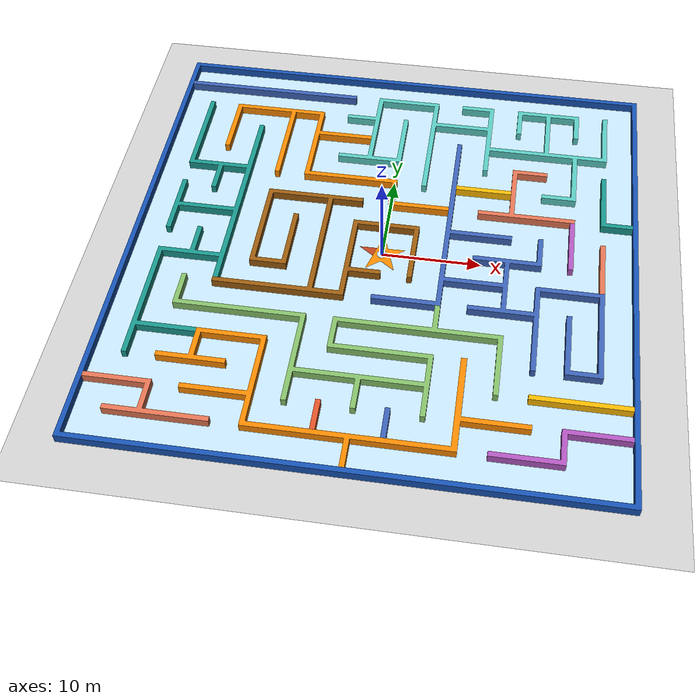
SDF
<sdf version='1.10'>
  <world name='empty'>
    <physics name='1ms' type='ignored'>
      <max_step_size>0.001</max_step_size>
      <real_time_factor>1</real_time_factor>
      <real_time_update_rate>1000</real_time_update_rate>
    </physics>
    <plugin name='gz::sim::systems::Physics' filename='gz-sim-physics-system'/>
    <plugin name='gz::sim::systems::UserCommands' filename='gz-sim-user-commands-system'/>
    <plugin name='gz::sim::systems::SceneBroadcaster' filename='gz-sim-scene-broadcaster-system'/>
    <plugin name='gz::sim::systems::Contact' filename='gz-sim-contact-system'/>
    <plugin name='gz::sim::systems::Sensors' filename='gz-sim-sensors-system'>
      <render_engine>ogre2</render_engine>
    </plugin>

    <gravity>0 0 -9.8000000000000007</gravity>
    <magnetic_field>5.5644999999999998e-06 2.2875799999999999e-05 -4.2388400000000002e-05</magnetic_field>
    <atmosphere type='adiabatic'/>
    <scene>
      <ambient>0.400000006 0.400000006 0.400000006 1</ambient>
      <background>0.699999988 0.699999988 0.699999988 1</background>
      <shadows>true</shadows>
    </scene>
    <model name='ground_plane'>
      <static>true</static>
      <link name='link'>
        <collision name='collision'>
          <geometry>
            <plane>
              <normal>0 0 1</normal>
              <size>100 100</size>
            </plane>
          </geometry>
          <surface>
            <friction>
              <ode/>
            </friction>
            <bounce/>
            <contact/>
          </surface>
        </collision>
        <visual name='visual'>
          <geometry>
            <plane>
              <normal>0 0 1</normal>
              <size>100 100</size>
            </plane>
          </geometry>
          <material>
            <ambient>0.800000012 0.800000012 0.800000012 1</ambient>
            <diffuse>0.800000012 0.800000012 0.800000012 1</diffuse>
            <specular>0.800000012 0.800000012 0.800000012 1</specular>
          </material>
        </visual>
        <pose>0 0 0 0 0 0</pose>
        <inertial>
          <pose>0 0 0 0 0 0</pose>
          <mass>1</mass>
          <inertia>
            <ixx>1</ixx>
            <ixy>0</ixy>
            <ixz>0</ixz>
            <iyy>1</iyy>
            <iyz>0</iyz>
            <izz>1</izz>
          </inertia>
        </inertial>
        <enable_wind>false</enable_wind>
      </link>
      <pose>0 0 0 0 0 0</pose>
      <self_collide>false</self_collide>
    </model>
    <model name='maze_world'>
      <link name='part_1'>
        <inertial>
          <pose>0 0 0.5 0 0 0</pose>
          <mass>106252</mass>
          <inertia>
            <ixx>45174800</ixx>
            <ixy>-7.7797000000000005e-08</ixy>
            <ixz>3.2700000000000001e-10</ixz>
            <iyy>45174800</iyy>
            <iyz>8.08e-10</iyz>
            <izz>90331900</izz>
          </inertia>
        </inertial>
        <pose>0 0 0 0 0 0</pose>
        <visual name='part_1_visual_mesh_1'>
          <pose relative_to='part_1'>0 0 0 0 0 0</pose>
          <geometry>
            <mesh>
              <uri>file:///root/ros2_ws/src/gazebo_sim/gazebo_core/core_gazebo/models/maze_world/meshes/part_1.stl</uri>
            </mesh>
          </geometry>
          <material>
            <ambient>0.0862744972 0.31764701 0.690195978 1</ambient>
            <diffuse>0.0862744972 0.31764701 0.690195978 1</diffuse>
            <specular>0.100000001 0.100000001 0.100000001 1</specular>
            <emissive>0 0 0 0</emissive>
          </material>
        </visual>
        <collision name='part_1_collision_mesh_2'>
          <pose relative_to='part_1'>0 0 0 0 0 0</pose>
          <geometry>
            <mesh>
              <uri>file:///root/ros2_ws/src/gazebo_sim/gazebo_core/core_gazebo/models/maze_world/meshes/part_1.stl</uri>
            </mesh>
          </geometry>
        </collision>
        <enable_wind>false</enable_wind>
      </link>
      <link name='part_2'>
        <inertial>
          <pose>-6.3289900000000001 -0.179225 0.5 0 0 0</pose>
          <mass>41647.800000000003</mass>
          <inertia>
            <ixx>730806</ixx>
            <ixy>-75930.399999999994</ixy>
            <ixz>-3.3999999999999999e-11</ixz>
            <iyy>1034040</iyy>
            <iyz>-7.9999999999999998e-12</iyz>
            <izz>1757900</izz>
          </inertia>
        </inertial>
        <pose>2.8867953456463336e-18 0 5.2403511826767952e-11 1.2030628608740676e-12 -4.9611963414138126e-12 3.6288946374317178e-20</pose>
        <visual name='part_2_visual_mesh_1'>
          <pose relative_to='part_2'>0 0 0 0 0 0</pose>
          <geometry>
            <mesh>
              <uri>file:///root/ros2_ws/src/gazebo_sim/gazebo_core/core_gazebo/models/maze_world/meshes/part_2.stl</uri>
            </mesh>
          </geometry>
          <material>
            <ambient>0.600000024 0.352941006 0.0549019985 1</ambient>
            <diffuse>0.600000024 0.352941006 0.0549019985 1</diffuse>
            <specular>0.100000001 0.100000001 0.100000001 1</specular>
            <emissive>0 0 0 0</emissive>
          </material>
        </visual>
        <collision name='part_2_collision_mesh_2'>
          <pose relative_to='part_2'>0 0 0 0 0 0</pose>
          <geometry>
            <mesh>
              <uri>file:///root/ros2_ws/src/gazebo_sim/gazebo_core/core_gazebo/models/maze_world/meshes/part_2.stl</uri>
            </mesh>
          </geometry>
        </collision>
        <enable_wind>false</enable_wind>
      </link>
      <link name='part_3'>
        <inertial>
          <pose>12.539300000000001 -2.5064600000000001 0.5 0 0 0</pose>
          <mass>51445</mass>
          <inertia>
            <ixx>2085750</ixx>
            <ixy>1058920</ixy>
            <ixz>2e-12</ixz>
            <iyy>1769860</iyy>
            <iyz>-7.0000000000000001e-12</iyz>
            <izz>3847040</izz>
          </inertia>
        </inertial>
        <pose>-1.9067704538031702e-20 0 4.3685453017180973e-11 5.2337667814900106e-12 1.4300286899360531e-13 -2.2617703044835857e-20</pose>
        <visual name='part_3_visual_mesh_1'>
          <pose relative_to='part_3'>0 0 0 0 0 0</pose>
          <geometry>
            <mesh>
              <uri>file:///root/ros2_ws/src/gazebo_sim/gazebo_core/core_gazebo/models/maze_world/meshes/part_3.stl</uri>
            </mesh>
          </geometry>
          <material>
            <ambient>0.231372997 0.380391985 0.705882013 1</ambient>
            <diffuse>0.231372997 0.380391985 0.705882013 1</diffuse>
            <specular>0.100000001 0.100000001 0.100000001 1</specular>
            <emissive>0 0 0 0</emissive>
          </material>
        </visual>
        <collision name='part_3_collision_mesh_2'>
          <pose relative_to='part_3'>0 0 0 0 0 0</pose>
          <geometry>
            <mesh>
              <uri>file:///root/ros2_ws/src/gazebo_sim/gazebo_core/core_gazebo/models/maze_world/meshes/part_3.stl</uri>
            </mesh>
          </geometry>
        </collision>
        <enable_wind>false</enable_wind>
      </link>
      <link name='part_4'>
        <inertial>
          <pose>8.4704899999999999 17.296399999999998 0.5 0 0 0</pose>
          <mass>57995.5</mass>
          <inertia>
            <ixx>762791</ixx>
            <ixy>-46266.199999999997</ixy>
            <ixz>7.4000000000000003e-11</ixz>
            <iyy>4253970</iyy>
            <iyz>-3.9999999999999999e-12</iyz>
            <izz>5007100</izz>
          </inertia>
        </inertial>
        <pose>-1.4403310938268579e-12 7.1720407390785113e-13 -8.557769417545662e-07 1.2099728341305749e-08 -4.7352610747229486e-08 -6.2716405280342972e-14</pose>
        <visual name='part_4_visual_mesh_1'>
          <pose relative_to='part_4'>0 0 0 0 0 0</pose>
          <geometry>
            <mesh>
              <uri>file:///root/ros2_ws/src/gazebo_sim/gazebo_core/core_gazebo/models/maze_world/meshes/part_4.stl</uri>
            </mesh>
          </geometry>
          <material>
            <ambient>0.341176003 0.776471019 0.741176009 1</ambient>
            <diffuse>0.341176003 0.776471019 0.741176009 1</diffuse>
            <specular>0.100000001 0.100000001 0.100000001 1</specular>
            <emissive>0 0 0 0</emissive>
          </material>
        </visual>
        <collision name='part_4_collision_mesh_2'>
          <pose relative_to='part_4'>0 0 0 0 0 0</pose>
          <geometry>
            <mesh>
              <uri>file:///root/ros2_ws/src/gazebo_sim/gazebo_core/core_gazebo/models/maze_world/meshes/part_4.stl</uri>
            </mesh>
          </geometry>
        </collision>
        <enable_wind>false</enable_wind>
      </link>
      <link name='part_5'>
        <inertial>
          <pose>13.6775 8.4757099999999994 0.5 0 0 0</pose>
          <mass>10236</mass>
          <inertia>
            <ixx>71104.399999999994</ixx>
            <ixy>4397.1599999999999</ixy>
            <ixz>-0</ixz>
            <iyy>51452.300000000003</iyy>
            <iyz>0</iyz>
            <izz>120851</izz>
          </inertia>
        </inertial>
        <pose>-1.1832024653495936e-18 0 2.5838466574668041e-11 1.2600257762805637e-12 1.8314860739970823e-12 4.7464856331541077e-20</pose>
        <visual name='part_5_visual_mesh_1'>
          <pose relative_to='part_5'>0 0 0 0 0 0</pose>
          <geometry>
            <mesh>
              <uri>file:///root/ros2_ws/src/gazebo_sim/gazebo_core/core_gazebo/models/maze_world/meshes/part_5.stl</uri>
            </mesh>
          </geometry>
          <material>
            <ambient>0.87450999 0.447059005 0.31764701 1</ambient>
            <diffuse>0.87450999 0.447059005 0.31764701 1</diffuse>
            <specular>0.100000001 0.100000001 0.100000001 1</specular>
            <emissive>0 0 0 0</emissive>
          </material>
        </visual>
        <collision name='part_5_collision_mesh_2'>
          <pose relative_to='part_5'>0 0 0 0 0 0</pose>
          <geometry>
            <mesh>
              <uri>file:///root/ros2_ws/src/gazebo_sim/gazebo_core/core_gazebo/models/maze_world/meshes/part_5.stl</uri>
            </mesh>
          </geometry>
        </collision>
        <enable_wind>false</enable_wind>
      </link>
      <link name='part_6'>
        <inertial>
          <pose>-2.9881199999999999 -18.249300000000002 0.5 0 0 0</pose>
          <mass>37324.699999999997</mass>
          <inertia>
            <ixx>445565</ixx>
            <ixy>478436</ixy>
            <ixz>-3.0000000000000001e-12</ixz>
            <iyy>3844420</iyy>
            <iyz>4.6999999999999999e-11</iyz>
            <izz>4283760</izz>
          </inertia>
        </inertial>
        <pose>-1.1447749571675335e-19 0 9.2766174030617426e-12 -1.2678875449735637e-12 -4.3339504647299246e-13 1.253253968968503e-20</pose>
        <visual name='part_6_visual_mesh_1'>
          <pose relative_to='part_6'>0 0 0 0 0 0</pose>
          <geometry>
            <mesh>
              <uri>file:///root/ros2_ws/src/gazebo_sim/gazebo_core/core_gazebo/models/maze_world/meshes/part_6.stl</uri>
            </mesh>
          </geometry>
          <material>
            <ambient>0.972549021 0.529411972 0.00392156979 1</ambient>
            <diffuse>0.972549021 0.529411972 0.00392156979 1</diffuse>
            <specular>0.100000001 0.100000001 0.100000001 1</specular>
            <emissive>0 0 0 0</emissive>
          </material>
        </visual>
        <collision name='part_6_collision_mesh_2'>
          <pose relative_to='part_6'>0 0 0 0 0 0</pose>
          <geometry>
            <mesh>
              <uri>file:///root/ros2_ws/src/gazebo_sim/gazebo_core/core_gazebo/models/maze_world/meshes/part_6.stl</uri>
            </mesh>
          </geometry>
        </collision>
        <enable_wind>false</enable_wind>
      </link>
      <link name='part_7'>
        <inertial>
          <pose>18.726600000000001 -20.385400000000001 0.5 0 0 0</pose>
          <mass>8303.2700000000004</mass>
          <inertia>
            <ixx>18666.5</ixx>
            <ixy>-32932.800000000003</ixy>
            <ixz>0</ixz>
            <iyy>89447.5</iyy>
            <iyz>-2e-12</iyz>
            <izz>106730</izz>
          </inertia>
        </inertial>
        <pose>4.3021526739912099e-19 0 -1.4936069468556022e-10 -5.6195930131709723e-12 -1.9327626173654104e-12 4.456177446047507e-20</pose>
        <visual name='part_7_visual_mesh_1'>
          <pose relative_to='part_7'>0 0 0 0 0 0</pose>
          <geometry>
            <mesh>
              <uri>file:///root/ros2_ws/src/gazebo_sim/gazebo_core/core_gazebo/models/maze_world/meshes/part_7.stl</uri>
            </mesh>
          </geometry>
          <material>
            <ambient>0.68235302 0.333332986 0.737254977 1</ambient>
            <diffuse>0.68235302 0.333332986 0.737254977 1</diffuse>
            <specular>0.100000001 0.100000001 0.100000001 1</specular>
            <emissive>0 0 0 0</emissive>
          </material>
        </visual>
        <collision name='part_7_collision_mesh_2'>
          <pose relative_to='part_7'>0 0 0 0 0 0</pose>
          <geometry>
            <mesh>
              <uri>file:///root/ros2_ws/src/gazebo_sim/gazebo_core/core_gazebo/models/maze_world/meshes/part_7.stl</uri>
            </mesh>
          </geometry>
        </collision>
        <enable_wind>false</enable_wind>
      </link>
      <link name='part_8'>
        <inertial>
          <pose>20.2712 -15.6045 0.5 0 0 0</pose>
          <mass>4974.7200000000003</mass>
          <inertia>
            <ixx>518.20000000000005</ixx>
            <ixy>0</ixy>
            <ixz>0</ixz>
            <iyy>37495.699999999997</iyy>
            <iyz>0</iyz>
            <izz>37184.800000000003</izz>
          </inertia>
        </inertial>
        <pose>-1.5858466107466091e-20 0 -6.2115708467438955e-11 5.0586645963105657e-14 -3.3927885498230572e-17 -1.6165443092599035e-22</pose>
        <visual name='part_8_visual_mesh_1'>
          <pose relative_to='part_8'>0 0 0 0 0 0</pose>
          <geometry>
            <mesh>
              <uri>file:///root/ros2_ws/src/gazebo_sim/gazebo_core/core_gazebo/models/maze_world/meshes/part_8.stl</uri>
            </mesh>
          </geometry>
          <material>
            <ambient>0.980391979 0.713724971 0.00392156979 1</ambient>
            <diffuse>0.980391979 0.713724971 0.00392156979 1</diffuse>
            <specular>0.100000001 0.100000001 0.100000001 1</specular>
            <emissive>0 0 0 0</emissive>
          </material>
        </visual>
        <collision name='part_8_collision_mesh_2'>
          <pose relative_to='part_8'>0 0 0 0 0 0</pose>
          <geometry>
            <mesh>
              <uri>file:///root/ros2_ws/src/gazebo_sim/gazebo_core/core_gazebo/models/maze_world/meshes/part_8.stl</uri>
            </mesh>
          </geometry>
        </collision>
        <enable_wind>false</enable_wind>
      </link>
      <link name='part_9'>
        <inertial>
          <pose>22.450700000000001 8.6110000000000007 0.5 0 0 0</pose>
          <mass>5137.4300000000003</mass>
          <inertia>
            <ixx>25379.200000000001</ixx>
            <ixy>5393.0900000000001</ixy>
            <ixz>-0</ixz>
            <iyy>4196.6999999999998</iyy>
            <iyz>0</iyz>
            <izz>28719.599999999999</izz>
          </inertia>
        </inertial>
        <pose>4.4686515194731298e-18 0 -1.8724289335518559e-10 -2.0237014843674442e-13 -6.9236341647377328e-12 -1.5407072614071399e-18</pose>
        <visual name='part_9_visual_mesh_1'>
          <pose relative_to='part_9'>0 0 0 0 0 0</pose>
          <geometry>
            <mesh>
              <uri>file:///root/ros2_ws/src/gazebo_sim/gazebo_core/core_gazebo/models/maze_world/meshes/part_9.stl</uri>
            </mesh>
          </geometry>
          <material>
            <ambient>0.0941175967 0.580392003 0.545098007 1</ambient>
            <diffuse>0.0941175967 0.580392003 0.545098007 1</diffuse>
            <specular>0.100000001 0.100000001 0.100000001 1</specular>
            <emissive>0 0 0 0</emissive>
          </material>
        </visual>
        <collision name='part_9_collision_mesh_2'>
          <pose relative_to='part_9'>0 0 0 0 0 0</pose>
          <geometry>
            <mesh>
              <uri>file:///root/ros2_ws/src/gazebo_sim/gazebo_core/core_gazebo/models/maze_world/meshes/part_9.stl</uri>
            </mesh>
          </geometry>
        </collision>
        <enable_wind>false</enable_wind>
      </link>
      <link name='part_10'>
        <inertial>
          <pose>-19.0305 -20.618400000000001 0.5 0 0 0</pose>
          <mass>9990.8199999999997</mass>
          <inertia>
            <ixx>22225.5</ixx>
            <ixy>28679.599999999999</ixy>
            <ixz>0</ixz>
            <iyy>96050.5</iyy>
            <iyz>-0</iyz>
            <izz>116611</izz>
          </inertia>
        </inertial>
        <pose>1.7345607878799824e-18 0 -1.0143115079623564e-10 -3.9205305113677884e-12 1.789939419158396e-12 -1.369963786051059e-19</pose>
        <visual name='part_10_visual_mesh_1'>
          <pose relative_to='part_10'>0 0 0 0 0 0</pose>
          <geometry>
            <mesh>
              <uri>file:///root/ros2_ws/src/gazebo_sim/gazebo_core/core_gazebo/models/maze_world/meshes/part_10.stl</uri>
            </mesh>
          </geometry>
          <material>
            <ambient>0.87450999 0.447059005 0.31764701 1</ambient>
            <diffuse>0.87450999 0.447059005 0.31764701 1</diffuse>
            <specular>0.100000001 0.100000001 0.100000001 1</specular>
            <emissive>0 0 0 0</emissive>
          </material>
        </visual>
        <collision name='part_10_collision_mesh_2'>
          <pose relative_to='part_10'>0 0 0 0 0 0</pose>
          <geometry>
            <mesh>
              <uri>file:///root/ros2_ws/src/gazebo_sim/gazebo_core/core_gazebo/models/maze_world/meshes/part_10.stl</uri>
            </mesh>
          </geometry>
        </collision>
        <enable_wind>false</enable_wind>
      </link>
      <link name='part_11'>
        <inertial>
          <pose>-15.501899999999999 22.040600000000001 0.5 0 0 0</pose>
          <mass>10427</mass>
          <inertia>
            <ixx>1105.48</ixx>
            <ixy>-6.3999999999999999e-11</ixy>
            <ixz>0</ixz>
            <iyy>314421</iyy>
            <iyz>0</iyz>
            <izz>313789</izz>
          </inertia>
        </inertial>
        <pose>-4.4637528573921039e-20 0 -6.5778673424832215e-11 5.6132659389388682e-14 -1.3466718015675577e-17 6.3068655745432501e-22</pose>
        <visual name='part_11_visual_mesh_1'>
          <pose relative_to='part_11'>0 0 0 0 0 0</pose>
          <geometry>
            <mesh>
              <uri>file:///root/ros2_ws/src/gazebo_sim/gazebo_core/core_gazebo/models/maze_world/meshes/part_11.stl</uri>
            </mesh>
          </geometry>
          <material>
            <ambient>0.231372997 0.380391985 0.705882013 1</ambient>
            <diffuse>0.231372997 0.380391985 0.705882013 1</diffuse>
            <specular>0.100000001 0.100000001 0.100000001 1</specular>
            <emissive>0 0 0 0</emissive>
          </material>
        </visual>
        <collision name='part_11_collision_mesh_2'>
          <pose relative_to='part_11'>0 0 0 0 0 0</pose>
          <geometry>
            <mesh>
              <uri>file:///root/ros2_ws/src/gazebo_sim/gazebo_core/core_gazebo/models/maze_world/meshes/part_11.stl</uri>
            </mesh>
          </geometry>
        </collision>
        <enable_wind>false</enable_wind>
      </link>
      <link name='part_12'>
        <inertial>
          <pose>-0.71310899999999999 -12.1288 0.5 0 0 0</pose>
          <mass>44649.800000000003</mass>
          <inertia>
            <ixx>443002</ixx>
            <ixy>276084</ixy>
            <ixz>3.9999999999999999e-12</ixz>
            <iyy>3174340</iyy>
            <iyz>2.7e-11</iyz>
            <izz>3609900</izz>
          </inertia>
        </inertial>
        <pose>3.1344929550763171e-19 0 3.0384527463511728e-11 -2.2396890243040129e-13 -1.2869615760170677e-12 8.2924973888723154e-21</pose>
        <visual name='part_12_visual_mesh_1'>
          <pose relative_to='part_12'>0 0 0 0 0 0</pose>
          <geometry>
            <mesh>
              <uri>file:///root/ros2_ws/src/gazebo_sim/gazebo_core/core_gazebo/models/maze_world/meshes/part_12.stl</uri>
            </mesh>
          </geometry>
          <material>
            <ambient>0.513724983 0.737254977 0.407842994 1</ambient>
            <diffuse>0.513724983 0.737254977 0.407842994 1</diffuse>
            <specular>0.100000001 0.100000001 0.100000001 1</specular>
            <emissive>0 0 0 0</emissive>
          </material>
        </visual>
        <collision name='part_12_collision_mesh_2'>
          <pose relative_to='part_12'>0 0 0 0 0 0</pose>
          <geometry>
            <mesh>
              <uri>file:///root/ros2_ws/src/gazebo_sim/gazebo_core/core_gazebo/models/maze_world/meshes/part_12.stl</uri>
            </mesh>
          </geometry>
        </collision>
        <enable_wind>false</enable_wind>
      </link>
      <link name='part_13'>
        <inertial>
          <pose>21.984500000000001 0.33372200000000002 0.5 0 0 0</pose>
          <mass>3295.4099999999999</mass>
          <inertia>
            <ixx>11053.5</ixx>
            <ixy>9.9999999999999998e-13</ixy>
            <ixz>0</ixz>
            <iyy>343.27199999999999</iyy>
            <iyz>0</iyz>
            <izz>10847.6</izz>
          </inertia>
        </inertial>
        <pose>4.1166537230584677e-16 4.4408920985006262e-16 -1.4364986589410214e-09 -5.0568520024772348e-12 -6.3323558841057995e-11 -2.5765740749116343e-17</pose>
        <visual name='part_13_visual_mesh_1'>
          <pose relative_to='part_13'>0 0 0 0 0 0</pose>
          <geometry>
            <mesh>
              <uri>file:///root/ros2_ws/src/gazebo_sim/gazebo_core/core_gazebo/models/maze_world/meshes/part_13.stl</uri>
            </mesh>
          </geometry>
          <material>
            <ambient>0.87450999 0.447059005 0.31764701 1</ambient>
            <diffuse>0.87450999 0.447059005 0.31764701 1</diffuse>
            <specular>0.100000001 0.100000001 0.100000001 1</specular>
            <emissive>0 0 0 0</emissive>
          </material>
        </visual>
        <collision name='part_13_collision_mesh_2'>
          <pose relative_to='part_13'>0 0 0 0 0 0</pose>
          <geometry>
            <mesh>
              <uri>file:///root/ros2_ws/src/gazebo_sim/gazebo_core/core_gazebo/models/maze_world/meshes/part_13.stl</uri>
            </mesh>
          </geometry>
        </collision>
        <enable_wind>false</enable_wind>
      </link>
      <link name='part_14'>
        <inertial>
          <pose>-8.8241800000000001 13.3104 0.5 0 0 0</pose>
          <mass>31106.599999999999</mass>
          <inertia>
            <ixx>561393</ixx>
            <ixy>642372</ixy>
            <ixz>3.0000000000000001e-12</ixz>
            <iyy>1328400</iyy>
            <iyz>2e-12</iyz>
            <izz>1884610</izz>
          </inertia>
        </inertial>
        <pose>3.0249104730988677e-19 0 2.43993829567718e-11 1.2211915714981073e-12 -1.1058002743556644e-12 -5.9277566349765969e-21</pose>
        <visual name='part_14_visual_mesh_1'>
          <pose relative_to='part_14'>0 0 0 0 0 0</pose>
          <geometry>
            <mesh>
              <uri>file:///root/ros2_ws/src/gazebo_sim/gazebo_core/core_gazebo/models/maze_world/meshes/part_14.stl</uri>
            </mesh>
          </geometry>
          <material>
            <ambient>0.972549021 0.529411972 0.00392156979 1</ambient>
            <diffuse>0.972549021 0.529411972 0.00392156979 1</diffuse>
            <specular>0.100000001 0.100000001 0.100000001 1</specular>
            <emissive>0 0 0 0</emissive>
          </material>
        </visual>
        <collision name='part_14_collision_mesh_2'>
          <pose relative_to='part_14'>0 0 0 0 0 0</pose>
          <geometry>
            <mesh>
              <uri>file:///root/ros2_ws/src/gazebo_sim/gazebo_core/core_gazebo/models/maze_world/meshes/part_14.stl</uri>
            </mesh>
          </geometry>
        </collision>
        <enable_wind>false</enable_wind>
      </link>
      <link name='part_15'>
        <inertial>
          <pose>18.855799999999999 2.9759600000000002 0.5 0 0 0</pose>
          <mass>3266.0900000000001</mass>
          <inertia>
            <ixx>10766</ixx>
            <ixy>-0</ixy>
            <ixz>0</ixz>
            <iyy>340.21800000000002</iyy>
            <iyz>0</iyz>
            <izz>10561.799999999999</izz>
          </inertia>
        </inertial>
        <pose>7.7183089207627466e-19 0 -6.2998653313148227e-11 -9.6451242846180196e-18 -6.0466060683436697e-14 -9.824431281669115e-22</pose>
        <visual name='part_15_visual_mesh_1'>
          <pose relative_to='part_15'>0 0 0 0 0 0</pose>
          <geometry>
            <mesh>
              <uri>file:///root/ros2_ws/src/gazebo_sim/gazebo_core/core_gazebo/models/maze_world/meshes/part_15.stl</uri>
            </mesh>
          </geometry>
          <material>
            <ambient>0.68235302 0.333332986 0.737254977 1</ambient>
            <diffuse>0.68235302 0.333332986 0.737254977 1</diffuse>
            <specular>0.100000001 0.100000001 0.100000001 1</specular>
            <emissive>0 0 0 0</emissive>
          </material>
        </visual>
        <collision name='part_15_collision_mesh_2'>
          <pose relative_to='part_15'>0 0 0 0 0 0</pose>
          <geometry>
            <mesh>
              <uri>file:///root/ros2_ws/src/gazebo_sim/gazebo_core/core_gazebo/models/maze_world/meshes/part_15.stl</uri>
            </mesh>
          </geometry>
        </collision>
        <enable_wind>false</enable_wind>
      </link>
      <link name='part_16'>
        <inertial>
          <pose>9.4744100000000007 9.5030199999999994 0.5 0 0 0</pose>
          <mass>3070.46</mass>
          <inertia>
            <ixx>321.57100000000003</ixx>
            <ixy>-2e-12</ixy>
            <ixz>0</ixz>
            <iyy>8744.7900000000009</iyy>
            <iyz>0</iyz>
            <izz>8554.6200000000008</izz>
          </inertia>
        </inertial>
        <pose>5.3766395324339029e-20 0 -6.1915182520896882e-11 3.3634206329770885e-15 1.4846735234551189e-19 2.6586554997642192e-21</pose>
        <visual name='part_16_visual_mesh_1'>
          <pose relative_to='part_16'>0 0 0 0 0 0</pose>
          <geometry>
            <mesh>
              <uri>file:///root/ros2_ws/src/gazebo_sim/gazebo_core/core_gazebo/models/maze_world/meshes/part_16.stl</uri>
            </mesh>
          </geometry>
          <material>
            <ambient>0.980391979 0.713724971 0.00392156979 1</ambient>
            <diffuse>0.980391979 0.713724971 0.00392156979 1</diffuse>
            <specular>0.100000001 0.100000001 0.100000001 1</specular>
            <emissive>0 0 0 0</emissive>
          </material>
        </visual>
        <collision name='part_16_collision_mesh_2'>
          <pose relative_to='part_16'>0 0 0 0 0 0</pose>
          <geometry>
            <mesh>
              <uri>file:///root/ros2_ws/src/gazebo_sim/gazebo_core/core_gazebo/models/maze_world/meshes/part_16.stl</uri>
            </mesh>
          </geometry>
        </collision>
        <enable_wind>false</enable_wind>
      </link>
      <link name='part_17'>
        <inertial>
          <pose>-19.099699999999999 1.9562600000000001 0.5 0 0 0</pose>
          <mass>43248.5</mass>
          <inertia>
            <ixx>3382300</ixx>
            <ixy>-146889</ixy>
            <ixz>-9.9999999999999998e-13</ixz>
            <iyy>311497</iyy>
            <iyz>-3.9999999999999999e-12</iyz>
            <izz>3686590</izz>
          </inertia>
        </inertial>
        <pose>4.588347439315504e-18 0 1.4414085828737267e-10 5.5739615559675224e-12 -7.230430105334415e-12 1.9218197936953606e-19</pose>
        <visual name='part_17_visual_mesh_1'>
          <pose relative_to='part_17'>0 0 0 0 0 0</pose>
          <geometry>
            <mesh>
              <uri>file:///root/ros2_ws/src/gazebo_sim/gazebo_core/core_gazebo/models/maze_world/meshes/part_17.stl</uri>
            </mesh>
          </geometry>
          <material>
            <ambient>0.0941175967 0.580392003 0.545098007 1</ambient>
            <diffuse>0.0941175967 0.580392003 0.545098007 1</diffuse>
            <specular>0.100000001 0.100000001 0.100000001 1</specular>
            <emissive>0 0 0 0</emissive>
          </material>
        </visual>
        <collision name='part_17_collision_mesh_2'>
          <pose relative_to='part_17'>0 0 0 0 0 0</pose>
          <geometry>
            <mesh>
              <uri>file:///root/ros2_ws/src/gazebo_sim/gazebo_core/core_gazebo/models/maze_world/meshes/part_17.stl</uri>
            </mesh>
          </geometry>
        </collision>
        <enable_wind>false</enable_wind>
      </link>
      <link name='part_18'>
        <inertial>
          <pose>-3.1325400000000001 -20.085999999999999 0.5 0 0 0</pose>
          <mass>1651.6600000000001</mass>
          <inertia>
            <ixx>1494.74</ixx>
            <ixy>-0</ixy>
            <ixz>0</ixz>
            <iyy>172.048</iyy>
            <iyz>-0</iyz>
            <izz>1391.51</izz>
          </inertia>
        </inertial>
        <pose>1.2858047998149824e-15 0 -4.5824237944122586e-11 -9.6392213933184387e-12 -6.0527430345649878e-11 -4.4261287021998085e-17</pose>
        <visual name='part_18_visual_mesh_1'>
          <pose relative_to='part_18'>0 0 0 0 0 0</pose>
          <geometry>
            <mesh>
              <uri>file:///root/ros2_ws/src/gazebo_sim/gazebo_core/core_gazebo/models/maze_world/meshes/part_18.stl</uri>
            </mesh>
          </geometry>
          <material>
            <ambient>0.866666973 0.321568996 0.156863004 1</ambient>
            <diffuse>0.866666973 0.321568996 0.156863004 1</diffuse>
            <specular>0.100000001 0.100000001 0.100000001 1</specular>
            <emissive>0 0 0 0</emissive>
          </material>
        </visual>
        <collision name='part_18_collision_mesh_2'>
          <pose relative_to='part_18'>0 0 0 0 0 0</pose>
          <geometry>
            <mesh>
              <uri>file:///root/ros2_ws/src/gazebo_sim/gazebo_core/core_gazebo/models/maze_world/meshes/part_18.stl</uri>
            </mesh>
          </geometry>
        </collision>
        <enable_wind>false</enable_wind>
      </link>
      <link name='part_19'>
        <inertial>
          <pose>3.17611 -20.085999999999999 0.5 0 0 0</pose>
          <mass>1651.6600000000001</mass>
          <inertia>
            <ixx>1494.74</ixx>
            <ixy>0</ixy>
            <ixz>0</ixz>
            <iyy>172.048</iyy>
            <iyz>0</iyz>
            <izz>1391.51</izz>
          </inertia>
        </inertial>
        <pose>1.2857532854666399e-15 0 -4.276881748390554e-10 -9.6389822506127993e-12 -6.0534265877790194e-11 -4.425636736707982e-17</pose>
        <visual name='part_19_visual_mesh_1'>
          <pose relative_to='part_19'>0 0 0 0 0 0</pose>
          <geometry>
            <mesh>
              <uri>file:///root/ros2_ws/src/gazebo_sim/gazebo_core/core_gazebo/models/maze_world/meshes/part_19.stl</uri>
            </mesh>
          </geometry>
          <material>
            <ambient>0.231372997 0.380391985 0.705882013 1</ambient>
            <diffuse>0.231372997 0.380391985 0.705882013 1</diffuse>
            <specular>0.100000001 0.100000001 0.100000001 1</specular>
            <emissive>0 0 0 0</emissive>
          </material>
        </visual>
        <collision name='part_19_collision_mesh_2'>
          <pose relative_to='part_19'>0 0 0 0 0 0</pose>
          <geometry>
            <mesh>
              <uri>file:///root/ros2_ws/src/gazebo_sim/gazebo_core/core_gazebo/models/maze_world/meshes/part_19.stl</uri>
            </mesh>
          </geometry>
        </collision>
        <enable_wind>false</enable_wind>
      </link>
      <link name='part_20'>
        <inertial>
          <pose>0.0213181 -0.0107508 0.050000000000000003 0 0 0</pose>
          <mass>225362</mass>
          <inertia>
            <ixx>48028800</ixx>
            <ixy>16287.799999999999</ixy>
            <ixz>-2e-12</ixz>
            <iyy>48050400</iyy>
            <iyz>-3.0000000000000001e-12</iyz>
            <izz>96078800</izz>
          </inertia>
        </inertial>
        <pose>1.4207792945597945e-14 3.4550140526334872e-13 -7.5918449286813692e-07 2.8139434799384886e-08 -5.7844034793814341e-09 5.7979748364618339e-15</pose>
        <visual name='part_20_visual_mesh_1'>
          <pose relative_to='part_20'>0 0 0 0 0 0</pose>
          <geometry>
            <mesh>
              <uri>file:///root/ros2_ws/src/gazebo_sim/gazebo_core/core_gazebo/models/maze_world/meshes/part_20.stl</uri>
            </mesh>
          </geometry>
          <material>
            <ambient>0.768626988 0.886274993 0.952941 1</ambient>
            <diffuse>0.768626988 0.886274993 0.952941 1</diffuse>
            <specular>0.100000001 0.100000001 0.100000001 1</specular>
            <emissive>0 0 0 0</emissive>
          </material>
        </visual>
        <collision name='part_20_collision_mesh_2'>
          <pose relative_to='part_20'>0 0 0 0 0 0</pose>
          <geometry>
            <mesh>
              <uri>file:///root/ros2_ws/src/gazebo_sim/gazebo_core/core_gazebo/models/maze_world/meshes/part_20.stl</uri>
            </mesh>
          </geometry>
        </collision>
        <enable_wind>false</enable_wind>
      </link>
      <link name='part_21'>
        <inertial>
          <pose>0 0 0.050000000000000003 0 0 0</pose>
          <mass>82.623900000000006</mass>
          <inertia>
            <ixx>5.23285</ixx>
            <ixy>0</ixy>
            <ixz>0</ixz>
            <iyy>5.23285</iyy>
            <iyz>0</iyz>
            <izz>10.327999999999999</izz>
          </inertia>
        </inertial>
        <pose>4.3495071902354557e-17 0 -4.9016747723229489e-11 1.9599445435690161e-10 -1.9599445435469713e-10 -1.9206925023312073e-20</pose>
        <visual name='part_21_visual_mesh_1'>
          <pose relative_to='part_21'>0 0 0 0 0 0</pose>
          <geometry>
            <mesh>
              <uri>file:///root/ros2_ws/src/gazebo_sim/gazebo_core/core_gazebo/models/maze_world/meshes/part_21.stl</uri>
            </mesh>
          </geometry>
          <material>
            <ambient>0.768626988 0.886274993 0.952941 1</ambient>
            <diffuse>0.768626988 0.886274993 0.952941 1</diffuse>
            <specular>0.100000001 0.100000001 0.100000001 1</specular>
            <emissive>0 0 0 0</emissive>
          </material>
        </visual>
        <collision name='part_21_collision_mesh_2'>
          <pose relative_to='part_21'>0 0 0 0 0 0</pose>
          <geometry>
            <mesh>
              <uri>file:///root/ros2_ws/src/gazebo_sim/gazebo_core/core_gazebo/models/maze_world/meshes/part_21.stl</uri>
            </mesh>
          </geometry>
        </collision>
        <enable_wind>false</enable_wind>
      </link>
      <link name='part_22'>
        <inertial>
          <pose>0.23282700000000001 -0.071182200000000001 0.050000000000000003 0 0 0</pose>
          <mass>516.88400000000001</mass>
          <inertia>
            <ixx>469.75400000000002</ixx>
            <ixy>-57.494199999999999</ixy>
            <ixz>0</ixz>
            <iyy>299.27600000000001</iyy>
            <iyz>-0</iyz>
            <izz>768.16899999999998</izz>
          </inertia>
        </inertial>
        <pose>5.9663396467224824e-15 -6.3504757008558954e-13 -9.6700100861445561e-08 1.4502866312533532e-07 -2.0353047850224886e-07 1.4876695421986872e-12</pose>
        <visual name='part_22_visual_mesh_1'>
          <pose relative_to='part_22'>0 0 0 0 0 0</pose>
          <geometry>
            <mesh>
              <uri>file:///root/ros2_ws/src/gazebo_sim/gazebo_core/core_gazebo/models/maze_world/meshes/part_22.stl</uri>
            </mesh>
          </geometry>
          <material>
            <ambient>0.972549021 0.529411972 0.00392156979 1</ambient>
            <diffuse>0.972549021 0.529411972 0.00392156979 1</diffuse>
            <specular>0.100000001 0.100000001 0.100000001 1</specular>
            <emissive>0 0 0 0</emissive>
          </material>
        </visual>
        <collision name='part_22_collision_mesh_2'>
          <pose relative_to='part_22'>0 0 0 0 0 0</pose>
          <geometry>
            <mesh>
              <uri>file:///root/ros2_ws/src/gazebo_sim/gazebo_core/core_gazebo/models/maze_world/meshes/part_22.stl</uri>
            </mesh>
          </geometry>
        </collision>
        <enable_wind>false</enable_wind>
      </link>
      <link name='part_23'>
        <inertial>
          <pose>-1.2518199999999999 0.38272 0.050000000000000003 0 0 0</pose>
          <mass>96.135599999999997</mass>
          <inertia>
            <ixx>5.71495</ixx>
            <ixy>2.8696899999999999</ixy>
            <ixz>0</ixz>
            <iyy>14.2239</iyy>
            <iyz>0</iyz>
            <izz>19.778700000000001</izz>
          </inertia>
        </inertial>
        <pose>5.2651323699755278e-19 0 -2.4043077151425501e-10 -3.8508768051351487e-13 -1.2580574089954249e-12 2.3503521923320402e-19</pose>
        <visual name='part_23_visual_mesh_1'>
          <pose relative_to='part_23'>0 0 0 0 0 0</pose>
          <geometry>
            <mesh>
              <uri>file:///root/ros2_ws/src/gazebo_sim/gazebo_core/core_gazebo/models/maze_world/meshes/part_23.stl</uri>
            </mesh>
          </geometry>
          <material>
            <ambient>0.729412019 0.25097999 0.105881996 1</ambient>
            <diffuse>0.729412019 0.25097999 0.105881996 1</diffuse>
            <specular>0.100000001 0.100000001 0.100000001 1</specular>
            <emissive>0 0 0 0</emissive>
          </material>
        </visual>
        <collision name='part_23_collision_mesh_2'>
          <pose relative_to='part_23'>0 0 0 0 0 0</pose>
          <geometry>
            <mesh>
              <uri>file:///root/ros2_ws/src/gazebo_sim/gazebo_core/core_gazebo/models/maze_world/meshes/part_23.stl</uri>
            </mesh>
          </geometry>
        </collision>
        <enable_wind>false</enable_wind>
      </link>
      <pose>-3.8956408801533326e-24 0.011545197106897831 -4.8981801253900059e-11 2.0124799369326949e-23 8.0488298575041264e-23 1.6695499961160115e-26</pose>
      <static>true</static>
      <self_collide>false</self_collide>
    </model>
    <light name='sun' type='directional'>
      <pose>0 0 10 0 0 0</pose>
      <cast_shadows>true</cast_shadows>
      <intensity>1</intensity>
      <direction>-0.5 0.10000000000000001 -0.90000000000000002</direction>
      <diffuse>0.800000012 0.800000012 0.800000012 1</diffuse>
      <specular>0.200000003 0.200000003 0.200000003 1</specular>
      <attenuation>
        <range>1000</range>
        <linear>0.0099999997764825821</linear>
        <constant>0.89999997615814209</constant>
        <quadratic>0.0010000000474974513</quadratic>
      </attenuation>
      <spot>
        <inner_angle>0</inner_angle>
        <outer_angle>0</outer_angle>
        <falloff>0</falloff>
      </spot>
    </light>
  </world>
</sdf>
